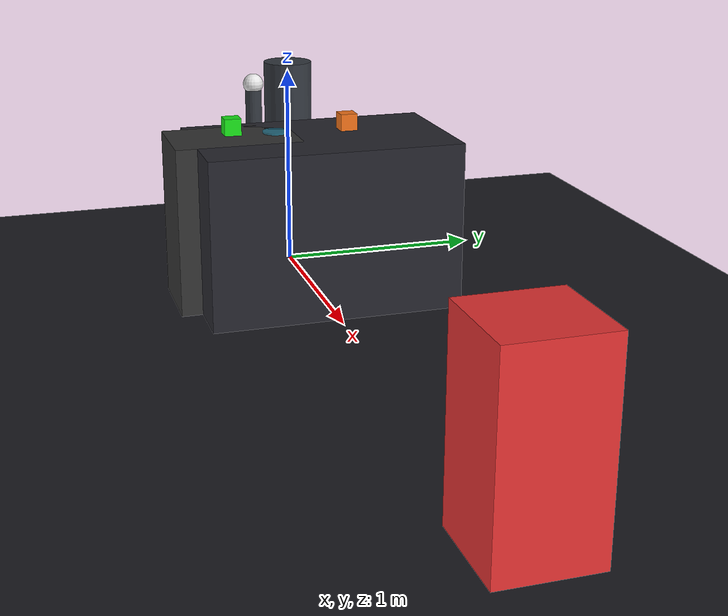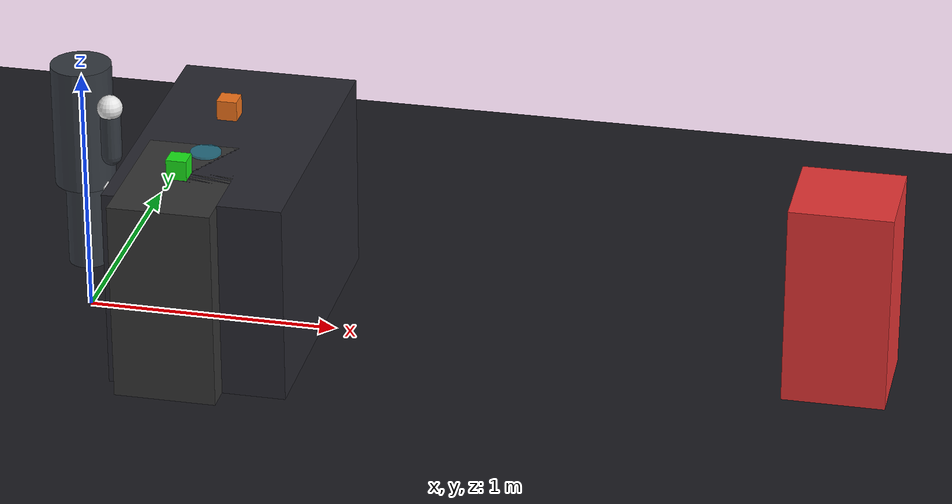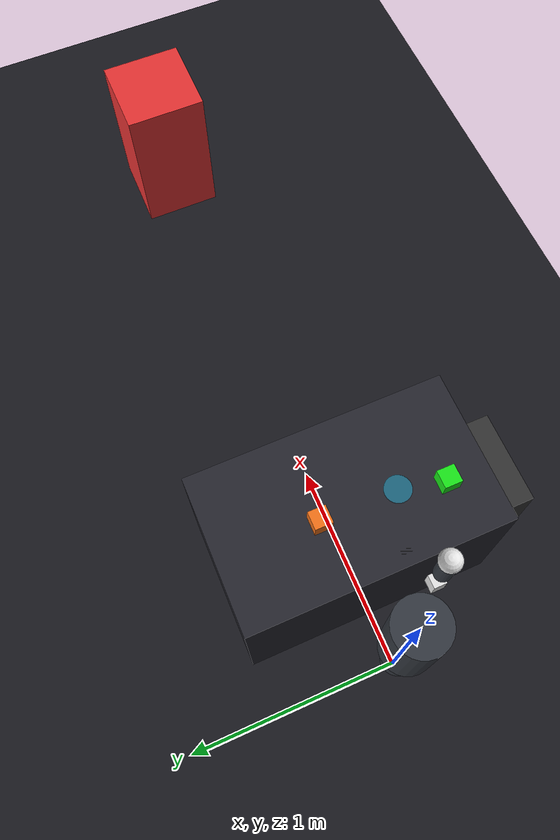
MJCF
<mujoco model="h1_with_obstacles_and_pick">
  <!-- Import your existing working scene -->
  <include file="scene.xml"/>

  <asset>
    <material name="obs_mat" rgba="0.9 0.2 0.2 1.0" specular="0.5"/>
    <material name="table_mat" rgba="0.2 0.2 0.2 1.0" specular="0.8"/>
    <material name="payload_mat" rgba="0.1 0.9 0.1 1.0" specular="0.9"/>
  </asset>

  <worldbody>
    <!-- Movable User Obstacle for Walk Avoidance -->
    <body name="user_obstacle" pos="3.0 0.0 0.4" mocap="true">
      <geom type="box" size="0.2 0.2 0.4" material="obs_mat" contype="0" conaffinity="0"/>
    </body>

    <!-- Table and Payload for Pick & Place -->
    <body name="table" pos="0.5 -0.4 0.4">
      <geom type="box" size="0.2 0.3 0.4" material="table_mat"/>
    </body>

    <body name="payload" pos="0.5 -0.4 0.85">
      <freejoint name="payload_joint"/>
      <geom name="payload_geom" type="box" size="0.04 0.04 0.04" mass="0.1" material="payload_mat"/>
    </body>
  </worldbody>

  <equality>
    <!-- Magnetic Grasping Trick: active="false" means it starts turned off -->
    <weld name="grasp_weld" body1="right_elbow_link" body2="payload" active="false" relpose="0 0.2 0 1 0 0 0"/>
  </equality>
</mujoco>

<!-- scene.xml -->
<mujoco model="spaceborn_h1_task">
  <compiler angle="radian" coordinate="local"/>
  <option gravity="0 0 -9.81" timestep="0.005"/>

  <visual>
    <global offwidth="1280" offheight="720"/>
    <quality shadowsize="2048"/>
  </visual>

  <asset>
    <texture type="skybox" builtin="gradient" rgb1="0.05 0.05 0.08" rgb2="0.01 0.01 0.02" width="512" height="512"/>
    <texture name="grid" type="2d" builtin="checker" rgb1="0.12 0.12 0.14" rgb2="0.08 0.08 0.10" width="512" height="512"/>
    <material name="grid_mat" texture="grid" texrepeat="20 20" reflectance="0.05"/>
    <material name="robot_mat" rgba="0.2 0.22 0.25 1.0" specular="0.4" shininess="0.5"/>
    <material name="accent_mat" rgba="0.9 0.9 0.9 1.0" specular="0.8" shininess="0.9"/>
    <material name="object_mat" rgba="0.95 0.45 0.1 1.0" specular="0.6"/>
    <material name="target_mat" rgba="0.1 0.8 1.0 0.4"/>
  </asset>

  <worldbody>
    <light diffuse="0.8 0.8 0.8" pos="0 -2 4" dir="0 0.5 -1"/>
    <light diffuse="0.4 0.4 0.5" pos="2 2 3" dir="-0.5 -0.5 -1"/>
    <geom name="floor" type="plane" size="10 10 0.1" material="grid_mat"/>

    <!-- Work Table -->
    <body name="table" pos="0.6 0 0.4">
      <geom type="box" size="0.35 0.6 0.4" rgba="0.15 0.15 0.18 1.0"/>
    </body>

    <!-- Pickable Object -->
    <body name="payload" pos="0.55 0.15 0.85">
      <freejoint name="payload_joint"/>
      <geom name="payload_geom" type="box" size="0.04 0.04 0.04" material="object_mat" mass="0.2"/>
    </body>

    <!-- Interactive Click Target Indicator -->
    <body name="target_marker" pos="0.55 -0.2 0.82" mocap="true">
      <geom type="cylinder" size="0.06 0.005" material="target_mat" contype="0" conaffinity="0"/>
    </body>

    <!-- Humanoid Upper Body / Manipulator -->
    <body name="base" pos="0 0 0.8">
      <geom name="torso" type="cylinder" size="0.12 0.25" material="robot_mat"/>
      <joint name="torso_yaw" type="hinge" axis="0 0 1" range="-1.57 1.57"/>

      <!-- Right Arm -->
      <body name="r_shoulder" pos="0.18 -0.22 0.18">
        <geom type="sphere" size="0.05" material="accent_mat"/>
        <joint name="r_shoulder_pitch" type="hinge" axis="0 1 0" range="-2.8 1.5"/>
        <joint name="r_shoulder_roll" type="hinge" axis="1 0 0" range="-1.5 1.5"/>

        <body name="r_upper_arm" pos="0 0 -0.2">
          <geom type="capsule" fromto="0 0 0.2 0 0 0" size="0.04" material="robot_mat"/>
          <joint name="r_elbow" type="hinge" axis="0 1 0" range="0 2.2"/>

          <body name="r_hand" pos="0 0 -0.18">
            <geom name="gripper" type="box" size="0.03 0.03 0.05" material="accent_mat"/>
            <site name="r_ee" pos="0 0 -0.06" size="0.01"/>
          </body>
        </body>
      </body>

      <!-- Base Legs (Kinematic Representation) -->
      <body name="legs" pos="0 0 -0.4">
        <geom type="cylinder" size="0.08 0.2" material="robot_mat"/>
      </body>
    </body>
  </worldbody>

  <actuator>
    <position name="act_torso_yaw" joint="torso_yaw" kp="200" ctrlrange="-1.57 1.57"/>
    <position name="act_r_shoulder_pitch" joint="r_shoulder_pitch" kp="150" ctrlrange="-2.8 1.5"/>
    <position name="act_r_shoulder_roll" joint="r_shoulder_roll" kp="150" ctrlrange="-1.5 1.5"/>
    <position name="act_r_elbow" joint="r_elbow" kp="120" ctrlrange="0 2.2"/>
  </actuator>
</mujoco>
